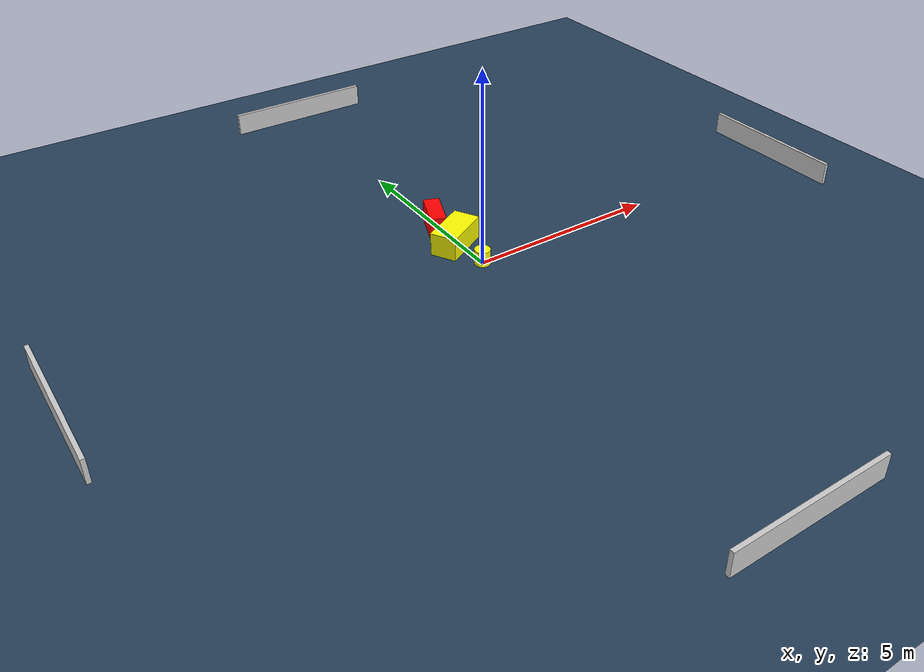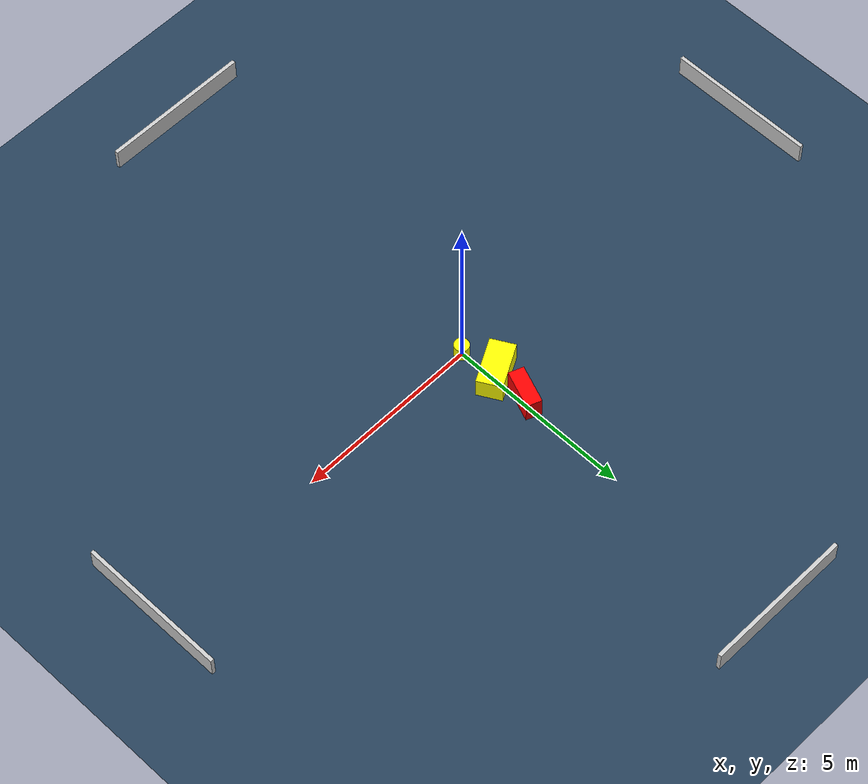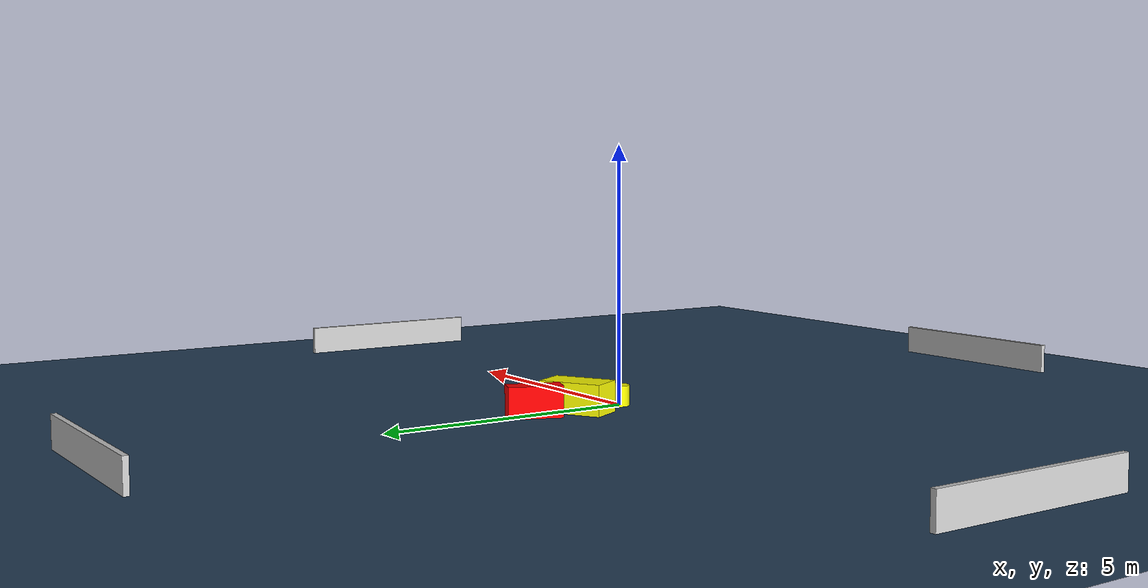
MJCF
<?xml version="1.0" ?>
<mujoco model="generated_environment">
  <option timestep="0.01" integrator="RK4" cone="elliptic"/>
  <default>
    <geom density="1"/>
  </default>
  <asset>
    <texture builtin="gradient" height="3072" name="skybox" rgb1="0.3 0.5 0.7" rgb2="0 0 0" type="skybox" width="512"/>
    <texture builtin="checker" height="300" name="groundplane" rgb1="0.2 0.3 0.4" rgb2="0.1 0.2 0.3" type="2d" width="300"/>
    <material name="groundplane" reflectance="0.2" texrepeat="5 5" texture="groundplane"/>
  </asset>
  <worldbody>
    <light dir="0 0 -1" directional="true" pos="0 0 1.5"/>
    <geom condim="3" friction="0.5 0.005 0.001" material="groundplane" name="floor" pos="0 0 0" size="0 0 0.05" type="plane"/>
    <body name="walls">
      <geom name="wall_1" condim="4" pos="-10.0 0.0 0.3" rgba="0.800000011920929 0.800000011920929 0.800000011920929 1.0" size="0.05 2.0 0.3" type="box"/>
      <geom name="wall_2" condim="4" pos="10.0 0.0 0.3" rgba="0.800000011920929 0.800000011920929 0.800000011920929 1.0" size="0.05 2.0 0.3" type="box"/>
      <geom name="wall_3" condim="4" pos="0.0 -10.0 0.3" rgba="0.800000011920929 0.800000011920929 0.800000011920929 1.0" size="2.0 0.05 0.3" type="box"/>
      <geom name="wall_4" condim="4" pos="0.0 10.0 0.3" rgba="0.800000011920929 0.800000011920929 0.800000011920929 1.0" size="2.0 0.05 0.3" type="box"/>
    </body>
    <body name="robot">
      <joint name="joint_x" type="slide" pos="0 0 0" axis="1 0 0"/>
      <joint name="joint_y" type="slide" pos="0 0 0" axis="0 1 0"/>
      <geom name="robot" type="cylinder" pos="0.0 0.0 0.2" size="0.2 0.2 0.0" mass="5.0" friction="1.0 0.005 0.0001" condim="4" rgba="1.0 1.0 0.0 1.0"/>
    </body>
    <body name="obstacle_1_movable">
      <geom name="obstacle_1_movable" condim="4" pos="-0.11268965516344294 1.0315005260695191 0.3" euler="0 0 118.8593559610963" friction="0.0 0.005 0.001" rgba="1.0 1.0 0.0 1.0" size="0.33939986296574587 0.6286068690672078 0.3" type="box" mass="0.1"/>
      <joint type="free"/>
    </body>
    <body name="obstacle_2_static">
      <geom name="obstacle_2_static" condim="4" pos="-0.10408167352057125 1.9841309108446 0.3" euler="0 0 338.6279547463446" friction="0.0 0.005 0.001" rgba="1.0 0.0 0.0 1.0" size="0.2081950958204083 0.5169958915146986 0.3" type="box"/>
    </body>
  </worldbody>
  <actuator>
    <motor name="actuator_x" joint="joint_x" gear="1" ctrlrange="-1 1"/>
    <motor name="actuator_y" joint="joint_y" gear="1" ctrlrange="-1 1"/>
  </actuator>
</mujoco>
